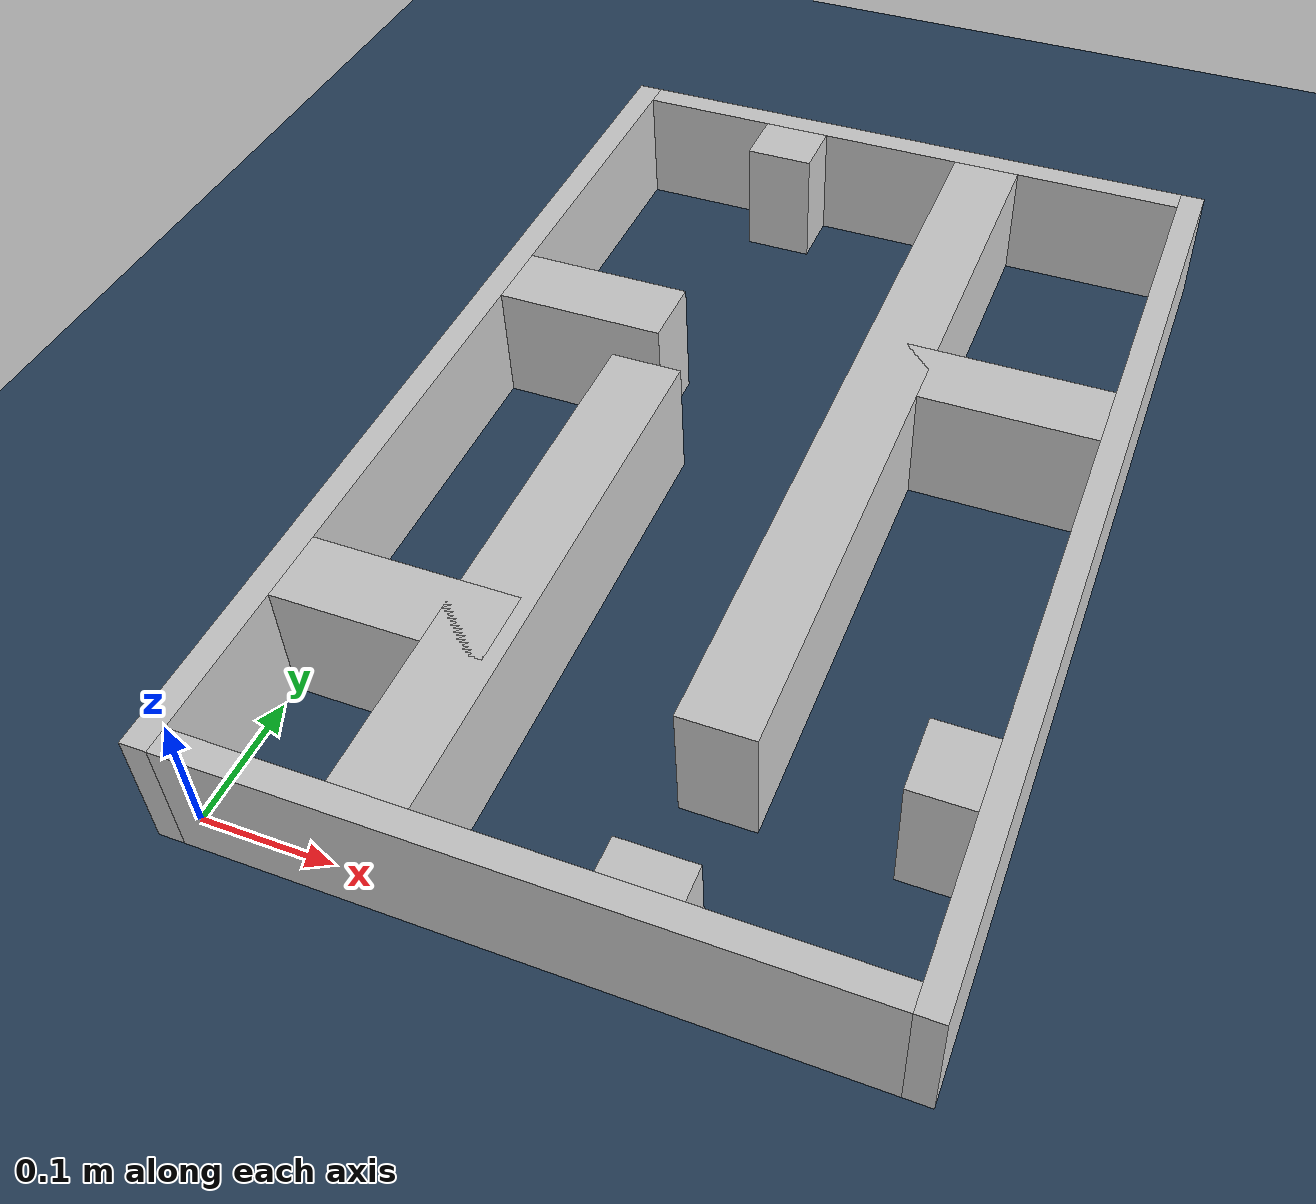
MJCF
<?xml version="1.0" ?>
<mujoco model="generated_real_template">
  <compiler angle="degree"/>
  <option timestep="0.002" integrator="implicitfast" iterations="100" cone="elliptic"/>
  <default>
    <geom density="1"/>
  </default>
  <asset>
    <texture builtin="gradient" height="3072" rgb1="0.3 0.5 0.7" rgb2="0 0 0" type="skybox" width="512"/>
    <texture builtin="checker" height="300" mark="edge" markrgb="0.8 0.8 0.8" name="groundplane" rgb1="0.2 0.3 0.4" rgb2="0.1 0.2 0.3" type="2d" width="300"/>
    <material name="groundplane" reflectance="0.2" texrepeat="5 5" texture="groundplane" texuniform="true"/>
  </asset>
  <worldbody>
    <light dir="0 0 -1" directional="true" pos="0 0 1.5"/>
    <geom name="floor" type="plane" condim="4" friction="0.5 0.005 0.001" material="groundplane" size="0 0 0.05"/>
    <body name="walls">
      <geom name="wall_boundary_left" type="box" condim="4" friction="1.0 0.005 0.0001" rgba="0.8 0.8 0.8 1" pos="-0.010000 0.387500 0.050000" euler="0 0 0.000000" size="0.010000 0.407500 0.050000"/>
      <geom name="wall_boundary_right" type="box" condim="4" friction="1.0 0.005 0.0001" rgba="0.8 0.8 0.8 1" pos="0.500000 0.387500 0.050000" euler="0 0 0.000000" size="0.010000 0.407500 0.050000"/>
      <geom name="wall_boundary_bottom" type="box" condim="4" friction="1.0 0.005 0.0001" rgba="0.8 0.8 0.8 1" pos="0.245000 -0.010000 0.050000" euler="0 0 0.000000" size="0.245000 0.010000 0.050000"/>
      <geom name="wall_boundary_top" type="box" condim="4" friction="1.0 0.005 0.0001" rgba="0.8 0.8 0.8 1" pos="0.245000 0.785000 0.050000" euler="0 0 0.000000" size="0.245000 0.010000 0.050000"/>
      <geom name="wall_inner_1_1" type="box" condim="4" friction="1.0 0.005 0.0001" rgba="0.8 0.8 0.8 1" pos="0.068874 0.489902 0.050000" euler="0 0 0.000000" size="0.068874 0.028500 0.050000"/>
      <geom name="wall_inner_1_2" type="box" condim="4" friction="1.0 0.005 0.0001" rgba="0.8 0.8 0.8 1" pos="0.403958 0.489902 0.050000" euler="0 0 0.000000" size="0.086042 0.028500 0.050000"/>
      <geom name="wall_inner_2_1" type="box" condim="4" friction="1.0 0.005 0.0001" rgba="0.8 0.8 0.8 1" pos="0.320919 0.012848 0.050000" euler="0 0 90.000000" size="0.012848 0.028500 0.050000"/>
      <geom name="wall_inner_2_2" type="box" condim="4" friction="1.0 0.005 0.0001" rgba="0.8 0.8 0.8 1" pos="0.320919 0.447101 0.050000" euler="0 0 90.000000" size="0.327899 0.028500 0.050000"/>
      <geom name="wall_inner_3_1" type="box" condim="4" friction="1.0 0.005 0.0001" rgba="0.8 0.8 0.8 1" pos="0.079935 0.145727 0.050000" euler="0 0 0.000000" size="0.079935 0.028500 0.050000"/>
      <geom name="wall_inner_3_2" type="box" condim="4" friction="1.0 0.005 0.0001" rgba="0.8 0.8 0.8 1" pos="0.466587 0.145727 0.050000" euler="0 0 0.000000" size="0.023413 0.028500 0.050000"/>
      <geom name="wall_inner_4_1" type="box" condim="4" friction="1.0 0.005 0.0001" rgba="0.8 0.8 0.8 1" pos="0.142846 0.212865 0.050000" euler="0 0 90.000000" size="0.212865 0.028500 0.050000"/>
      <geom name="wall_inner_4_2" type="box" condim="4" friction="1.0 0.005 0.0001" rgba="0.8 0.8 0.8 1" pos="0.142846 0.751030 0.050000" euler="0 0 90.000000" size="0.023970 0.028500 0.050000"/>
    </body>
  </worldbody>
</mujoco>
